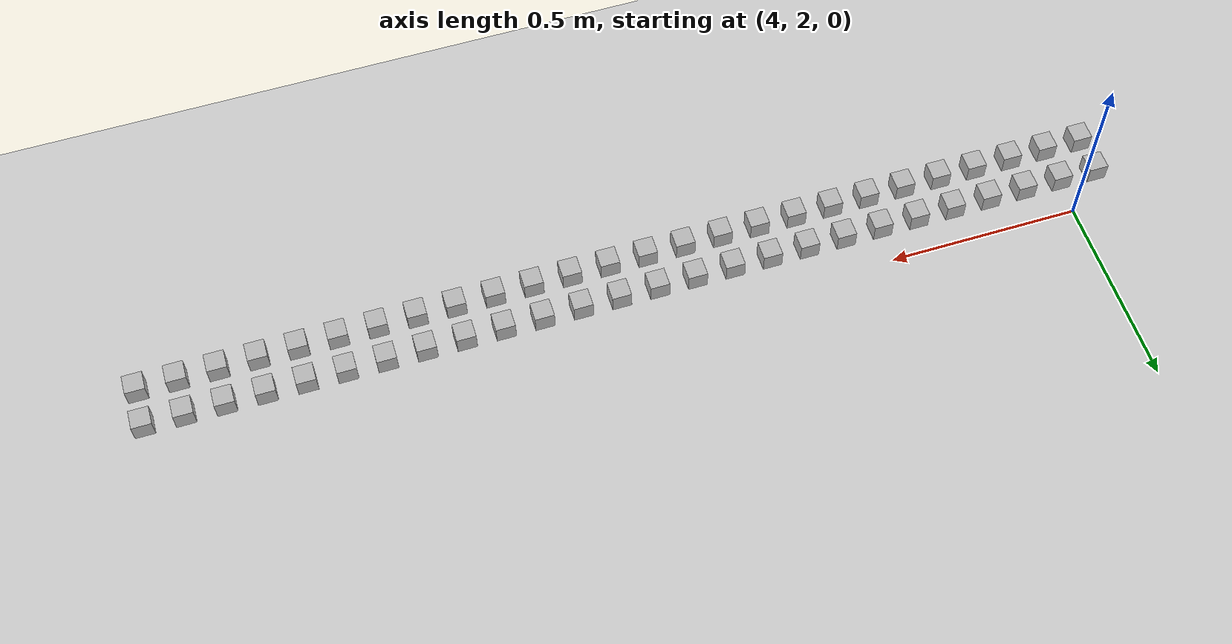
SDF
<sdf version="1.6">
 <world name="default">
  <model name="ground_plane">
   <static>1</static>
   <link name="link">
    <collision name="collision">
     <geometry><plane><normal>0 0 1</normal><size>100 100</size></plane></geometry>
     <surface><friction><ode><mu>100</mu><mu2>50</mu2></ode></friction></surface>
    </collision>
    <visual name="visual">
     <cast_shadows>0</cast_shadows>
     <geometry><plane><normal>0 0 1</normal><size>100 100</size></plane></geometry>
     <material>
      <script><uri>file://media/materials/scripts/gazebo.material</uri><name>Gazebo/Grey</name></script>
     </material>
    </visual>
   </link>
  </model>
  <model name="at0">
   <static>0</static>
   <link name="link">
    <inertial>
     <mass>0.01</mass>
     <inertia><ixx>4e-05</ixx><ixy>0</ixy><ixz>0</ixz><iyy>4e-05</iyy><iyz>0</iyz><izz>4e-05</izz></inertia>
    </inertial>
    <visual name="visual">
     <geometry><box><size>0.05 0.05 0.05</size></box></geometry>
     <material>
      <script>
       <uri>model://at0/materials/scripts</uri>
       <uri>model://at0/materials/textures</uri>
       <name>at0/Diffuse</name>
      </script>
     </material>
    </visual>
    <collision name="collision">
     <geometry><box><size>0.05 0.05 0.05</size></box></geometry>
     <surface><friction><ode><mu>0.8</mu><mu2>0.7</mu2></ode></friction></surface>
    </collision>
   </link>
   <pose>3.9 1.8 0.025 0 -0 0</pose>
  </model>
  <model name="at1">
   <static>0</static>
   <link name="link">
    <inertial>
     <mass>0.01</mass>
     <inertia><ixx>4e-05</ixx><ixy>0</ixy><ixz>0</ixz><iyy>4e-05</iyy><iyz>0</iyz><izz>4e-05</izz></inertia>
    </inertial>
    <visual name="visual">
     <geometry><box><size>0.05 0.05 0.05</size></box></geometry>
     <material>
      <script>
       <uri>model://at0/materials/scripts</uri>
       <uri>model://at0/materials/textures</uri>
       <name>at0/Diffuse</name>
      </script>
     </material>
    </visual>
    <collision name="collision">
     <geometry><box><size>0.05 0.05 0.05</size></box></geometry>
     <surface><friction><ode><mu>0.8</mu><mu2>0.7</mu2></ode></friction></surface>
    </collision>
   </link>
   <pose>4 1.8 0.025 0 -0 0</pose>
  </model>
  <model name="at2">
   <static>0</static>
   <link name="link">
    <inertial>
     <mass>0.01</mass>
     <inertia><ixx>4e-05</ixx><ixy>0</ixy><ixz>0</ixz><iyy>4e-05</iyy><iyz>0</iyz><izz>4e-05</izz></inertia>
    </inertial>
    <visual name="visual">
     <geometry><box><size>0.05 0.05 0.05</size></box></geometry>
     <material>
      <script>
       <uri>model://at0/materials/scripts</uri>
       <uri>model://at0/materials/textures</uri>
       <name>at0/Diffuse</name>
      </script>
     </material>
    </visual>
    <collision name="collision">
     <geometry><box><size>0.05 0.05 0.05</size></box></geometry>
     <surface><friction><ode><mu>0.8</mu><mu2>0.7</mu2></ode></friction></surface>
    </collision>
   </link>
   <pose>4.1 1.8 0.025 0 -0 0</pose>
  </model>
  <model name="at3">
   <static>0</static>
   <link name="link">
    <inertial>
     <mass>0.01</mass>
     <inertia><ixx>4e-05</ixx><ixy>0</ixy><ixz>0</ixz><iyy>4e-05</iyy><iyz>0</iyz><izz>4e-05</izz></inertia>
    </inertial>
    <visual name="visual">
     <geometry><box><size>0.05 0.05 0.05</size></box></geometry>
     <material>
      <script>
       <uri>model://at0/materials/scripts</uri>
       <uri>model://at0/materials/textures</uri>
       <name>at0/Diffuse</name>
      </script>
     </material>
    </visual>
    <collision name="collision">
     <geometry><box><size>0.05 0.05 0.05</size></box></geometry>
     <surface><friction><ode><mu>0.8</mu><mu2>0.7</mu2></ode></friction></surface>
    </collision>
   </link>
   <pose>4.2 1.8 0.025 0 -0 0</pose>
  </model>
  <model name="at4">
   <static>0</static>
   <link name="link">
    <inertial>
     <mass>0.01</mass>
     <inertia><ixx>4e-05</ixx><ixy>0</ixy><ixz>0</ixz><iyy>4e-05</iyy><iyz>0</iyz><izz>4e-05</izz></inertia>
    </inertial>
    <visual name="visual">
     <geometry><box><size>0.05 0.05 0.05</size></box></geometry>
     <material>
      <script>
       <uri>model://at0/materials/scripts</uri>
       <uri>model://at0/materials/textures</uri>
       <name>at0/Diffuse</name>
      </script>
     </material>
    </visual>
    <collision name="collision">
     <geometry><box><size>0.05 0.05 0.05</size></box></geometry>
     <surface><friction><ode><mu>0.8</mu><mu2>0.7</mu2></ode></friction></surface>
    </collision>
   </link>
   <pose>4.3 1.8 0.025 0 -0 0</pose>
  </model>
  <model name="at5">
   <static>0</static>
   <link name="link">
    <inertial>
     <mass>0.01</mass>
     <inertia><ixx>4e-05</ixx><ixy>0</ixy><ixz>0</ixz><iyy>4e-05</iyy><iyz>0</iyz><izz>4e-05</izz></inertia>
    </inertial>
    <visual name="visual">
     <geometry><box><size>0.05 0.05 0.05</size></box></geometry>
     <material>
      <script>
       <uri>model://at0/materials/scripts</uri>
       <uri>model://at0/materials/textures</uri>
       <name>at0/Diffuse</name>
      </script>
     </material>
    </visual>
    <collision name="collision">
     <geometry><box><size>0.05 0.05 0.05</size></box></geometry>
     <surface><friction><ode><mu>0.8</mu><mu2>0.7</mu2></ode></friction></surface>
    </collision>
   </link>
   <pose>4.4 1.8 0.025 0 -0 0</pose>
  </model>
  <model name="at6">
   <static>0</static>
   <link name="link">
    <inertial>
     <mass>0.01</mass>
     <inertia><ixx>4e-05</ixx><ixy>0</ixy><ixz>0</ixz><iyy>4e-05</iyy><iyz>0</iyz><izz>4e-05</izz></inertia>
    </inertial>
    <visual name="visual">
     <geometry><box><size>0.05 0.05 0.05</size></box></geometry>
     <material>
      <script>
       <uri>model://at0/materials/scripts</uri>
       <uri>model://at0/materials/textures</uri>
       <name>at0/Diffuse</name>
      </script>
     </material>
    </visual>
    <collision name="collision">
     <geometry><box><size>0.05 0.05 0.05</size></box></geometry>
     <surface><friction><ode><mu>0.8</mu><mu2>0.7</mu2></ode></friction></surface>
    </collision>
   </link>
   <pose>4.5 1.8 0.025 0 -0 0</pose>
  </model>
  <model name="at7">
   <static>0</static>
   <link name="link">
    <inertial>
     <mass>0.01</mass>
     <inertia><ixx>4e-05</ixx><ixy>0</ixy><ixz>0</ixz><iyy>4e-05</iyy><iyz>0</iyz><izz>4e-05</izz></inertia>
    </inertial>
    <visual name="visual">
     <geometry><box><size>0.05 0.05 0.05</size></box></geometry>
     <material>
      <script>
       <uri>model://at0/materials/scripts</uri>
       <uri>model://at0/materials/textures</uri>
       <name>at0/Diffuse</name>
      </script>
     </material>
    </visual>
    <collision name="collision">
     <geometry><box><size>0.05 0.05 0.05</size></box></geometry>
     <surface><friction><ode><mu>0.8</mu><mu2>0.7</mu2></ode></friction></surface>
    </collision>
   </link>
   <pose>4.6 1.8 0.025 0 -0 0</pose>
  </model>
  <model name="at8">
   <static>0</static>
   <link name="link">
    <inertial>
     <mass>0.01</mass>
     <inertia><ixx>4e-05</ixx><ixy>0</ixy><ixz>0</ixz><iyy>4e-05</iyy><iyz>0</iyz><izz>4e-05</izz></inertia>
    </inertial>
    <visual name="visual">
     <geometry><box><size>0.05 0.05 0.05</size></box></geometry>
     <material>
      <script>
       <uri>model://at0/materials/scripts</uri>
       <uri>model://at0/materials/textures</uri>
       <name>at0/Diffuse</name>
      </script>
     </material>
    </visual>
    <collision name="collision">
     <geometry><box><size>0.05 0.05 0.05</size></box></geometry>
     <surface><friction><ode><mu>0.8</mu><mu2>0.7</mu2></ode></friction></surface>
    </collision>
   </link>
   <pose>4.7 1.8 0.025 0 -0 0</pose>
  </model>
  <model name="at9">
   <static>0</static>
   <link name="link">
    <inertial>
     <mass>0.01</mass>
     <inertia><ixx>4e-05</ixx><ixy>0</ixy><ixz>0</ixz><iyy>4e-05</iyy><iyz>0</iyz><izz>4e-05</izz></inertia>
    </inertial>
    <visual name="visual">
     <geometry><box><size>0.05 0.05 0.05</size></box></geometry>
     <material>
      <script>
       <uri>model://at0/materials/scripts</uri>
       <uri>model://at0/materials/textures</uri>
       <name>at0/Diffuse</name>
      </script>
     </material>
    </visual>
    <collision name="collision">
     <geometry><box><size>0.05 0.05 0.05</size></box></geometry>
     <surface><friction><ode><mu>0.8</mu><mu2>0.7</mu2></ode></friction></surface>
    </collision>
   </link>
   <pose>4.8 1.8 0.025 0 -0 0</pose>
  </model>
  <model name="at10">
   <static>0</static>
   <link name="link">
    <inertial>
     <mass>0.01</mass>
     <inertia><ixx>4e-05</ixx><ixy>0</ixy><ixz>0</ixz><iyy>4e-05</iyy><iyz>0</iyz><izz>4e-05</izz></inertia>
    </inertial>
    <visual name="visual">
     <geometry><box><size>0.05 0.05 0.05</size></box></geometry>
     <material>
      <script>
       <uri>model://at0/materials/scripts</uri>
       <uri>model://at0/materials/textures</uri>
       <name>at0/Diffuse</name>
      </script>
     </material>
    </visual>
    <collision name="collision">
     <geometry><box><size>0.05 0.05 0.05</size></box></geometry>
     <surface><friction><ode><mu>0.8</mu><mu2>0.7</mu2></ode></friction></surface>
    </collision>
   </link>
   <pose>4.9 1.8 0.025 0 -0 0</pose>
  </model>
  <model name="at11">
   <static>0</static>
   <link name="link">
    <inertial>
     <mass>0.01</mass>
     <inertia><ixx>4e-05</ixx><ixy>0</ixy><ixz>0</ixz><iyy>4e-05</iyy><iyz>0</iyz><izz>4e-05</izz></inertia>
    </inertial>
    <visual name="visual">
     <geometry><box><size>0.05 0.05 0.05</size></box></geometry>
     <material>
      <script>
       <uri>model://at0/materials/scripts</uri>
       <uri>model://at0/materials/textures</uri>
       <name>at0/Diffuse</name>
      </script>
     </material>
    </visual>
    <collision name="collision">
     <geometry><box><size>0.05 0.05 0.05</size></box></geometry>
     <surface><friction><ode><mu>0.8</mu><mu2>0.7</mu2></ode></friction></surface>
    </collision>
   </link>
   <pose>5 1.8 0.025 0 -0 0</pose>
  </model>
  <model name="at12">
   <static>0</static>
   <link name="link">
    <inertial>
     <mass>0.01</mass>
     <inertia><ixx>4e-05</ixx><ixy>0</ixy><ixz>0</ixz><iyy>4e-05</iyy><iyz>0</iyz><izz>4e-05</izz></inertia>
    </inertial>
    <visual name="visual">
     <geometry><box><size>0.05 0.05 0.05</size></box></geometry>
     <material>
      <script>
       <uri>model://at0/materials/scripts</uri>
       <uri>model://at0/materials/textures</uri>
       <name>at0/Diffuse</name>
      </script>
     </material>
    </visual>
    <collision name="collision">
     <geometry><box><size>0.05 0.05 0.05</size></box></geometry>
     <surface><friction><ode><mu>0.8</mu><mu2>0.7</mu2></ode></friction></surface>
    </collision>
   </link>
   <pose>5.1 1.8 0.025 0 -0 0</pose>
  </model>
  <model name="at13">
   <static>0</static>
   <link name="link">
    <inertial>
     <mass>0.01</mass>
     <inertia><ixx>4e-05</ixx><ixy>0</ixy><ixz>0</ixz><iyy>4e-05</iyy><iyz>0</iyz><izz>4e-05</izz></inertia>
    </inertial>
    <visual name="visual">
     <geometry><box><size>0.05 0.05 0.05</size></box></geometry>
     <material>
      <script>
       <uri>model://at0/materials/scripts</uri>
       <uri>model://at0/materials/textures</uri>
       <name>at0/Diffuse</name>
      </script>
     </material>
    </visual>
    <collision name="collision">
     <geometry><box><size>0.05 0.05 0.05</size></box></geometry>
     <surface><friction><ode><mu>0.8</mu><mu2>0.7</mu2></ode></friction></surface>
    </collision>
   </link>
   <pose>5.2 1.8 0.025 0 -0 0</pose>
  </model>
  <model name="at14">
   <static>0</static>
   <link name="link">
    <inertial>
     <mass>0.01</mass>
     <inertia><ixx>4e-05</ixx><ixy>0</ixy><ixz>0</ixz><iyy>4e-05</iyy><iyz>0</iyz><izz>4e-05</izz></inertia>
    </inertial>
    <visual name="visual">
     <geometry><box><size>0.05 0.05 0.05</size></box></geometry>
     <material>
      <script>
       <uri>model://at0/materials/scripts</uri>
       <uri>model://at0/materials/textures</uri>
       <name>at0/Diffuse</name>
      </script>
     </material>
    </visual>
    <collision name="collision">
     <geometry><box><size>0.05 0.05 0.05</size></box></geometry>
     <surface><friction><ode><mu>0.8</mu><mu2>0.7</mu2></ode></friction></surface>
    </collision>
   </link>
   <pose>5.3 1.8 0.025 0 -0 0</pose>
  </model>
  <model name="at15">
   <static>0</static>
   <link name="link">
    <inertial>
     <mass>0.01</mass>
     <inertia><ixx>4e-05</ixx><ixy>0</ixy><ixz>0</ixz><iyy>4e-05</iyy><iyz>0</iyz><izz>4e-05</izz></inertia>
    </inertial>
    <visual name="visual">
     <geometry><box><size>0.05 0.05 0.05</size></box></geometry>
     <material>
      <script>
       <uri>model://at0/materials/scripts</uri>
       <uri>model://at0/materials/textures</uri>
       <name>at0/Diffuse</name>
      </script>
     </material>
    </visual>
    <collision name="collision">
     <geometry><box><size>0.05 0.05 0.05</size></box></geometry>
     <surface><friction><ode><mu>0.8</mu><mu2>0.7</mu2></ode></friction></surface>
    </collision>
   </link>
   <pose>5.4 1.8 0.025 0 -0 0</pose>
  </model>
  <model name="at16">
   <static>0</static>
   <link name="link">
    <inertial>
     <mass>0.01</mass>
     <inertia><ixx>4e-05</ixx><ixy>0</ixy><ixz>0</ixz><iyy>4e-05</iyy><iyz>0</iyz><izz>4e-05</izz></inertia>
    </inertial>
    <visual name="visual">
     <geometry><box><size>0.05 0.05 0.05</size></box></geometry>
     <material>
      <script>
       <uri>model://at0/materials/scripts</uri>
       <uri>model://at0/materials/textures</uri>
       <name>at0/Diffuse</name>
      </script>
     </material>
    </visual>
    <collision name="collision">
     <geometry><box><size>0.05 0.05 0.05</size></box></geometry>
     <surface><friction><ode><mu>0.8</mu><mu2>0.7</mu2></ode></friction></surface>
    </collision>
   </link>
   <pose>5.5 1.8 0.025 0 -0 0</pose>
  </model>
  <model name="at17">
   <static>0</static>
   <link name="link">
    <inertial>
     <mass>0.01</mass>
     <inertia><ixx>4e-05</ixx><ixy>0</ixy><ixz>0</ixz><iyy>4e-05</iyy><iyz>0</iyz><izz>4e-05</izz></inertia>
    </inertial>
    <visual name="visual">
     <geometry><box><size>0.05 0.05 0.05</size></box></geometry>
     <material>
      <script>
       <uri>model://at0/materials/scripts</uri>
       <uri>model://at0/materials/textures</uri>
       <name>at0/Diffuse</name>
      </script>
     </material>
    </visual>
    <collision name="collision">
     <geometry><box><size>0.05 0.05 0.05</size></box></geometry>
     <surface><friction><ode><mu>0.8</mu><mu2>0.7</mu2></ode></friction></surface>
    </collision>
   </link>
   <pose>5.6 1.8 0.025 0 -0 0</pose>
  </model>
  <model name="at18">
   <static>0</static>
   <link name="link">
    <inertial>
     <mass>0.01</mass>
     <inertia><ixx>4e-05</ixx><ixy>0</ixy><ixz>0</ixz><iyy>4e-05</iyy><iyz>0</iyz><izz>4e-05</izz></inertia>
    </inertial>
    <visual name="visual">
     <geometry><box><size>0.05 0.05 0.05</size></box></geometry>
     <material>
      <script>
       <uri>model://at0/materials/scripts</uri>
       <uri>model://at0/materials/textures</uri>
       <name>at0/Diffuse</name>
      </script>
     </material>
    </visual>
    <collision name="collision">
     <geometry><box><size>0.05 0.05 0.05</size></box></geometry>
     <surface><friction><ode><mu>0.8</mu><mu2>0.7</mu2></ode></friction></surface>
    </collision>
   </link>
   <pose>5.7 1.8 0.025 0 -0 0</pose>
  </model>
  <model name="at19">
   <static>0</static>
   <link name="link">
    <inertial>
     <mass>0.01</mass>
     <inertia><ixx>4e-05</ixx><ixy>0</ixy><ixz>0</ixz><iyy>4e-05</iyy><iyz>0</iyz><izz>4e-05</izz></inertia>
    </inertial>
    <visual name="visual">
     <geometry><box><size>0.05 0.05 0.05</size></box></geometry>
     <material>
      <script>
       <uri>model://at0/materials/scripts</uri>
       <uri>model://at0/materials/textures</uri>
       <name>at0/Diffuse</name>
      </script>
     </material>
    </visual>
    <collision name="collision">
     <geometry><box><size>0.05 0.05 0.05</size></box></geometry>
     <surface><friction><ode><mu>0.8</mu><mu2>0.7</mu2></ode></friction></surface>
    </collision>
   </link>
   <pose>5.8 1.8 0.025 0 -0 0</pose>
  </model>
  <model name="at20">
   <static>0</static>
   <link name="link">
    <inertial>
     <mass>0.01</mass>
     <inertia><ixx>4e-05</ixx><ixy>0</ixy><ixz>0</ixz><iyy>4e-05</iyy><iyz>0</iyz><izz>4e-05</izz></inertia>
    </inertial>
    <visual name="visual">
     <geometry><box><size>0.05 0.05 0.05</size></box></geometry>
     <material>
      <script>
       <uri>model://at0/materials/scripts</uri>
       <uri>model://at0/materials/textures</uri>
       <name>at0/Diffuse</name>
      </script>
     </material>
    </visual>
    <collision name="collision">
     <geometry><box><size>0.05 0.05 0.05</size></box></geometry>
     <surface><friction><ode><mu>0.8</mu><mu2>0.7</mu2></ode></friction></surface>
    </collision>
   </link>
   <pose>5.9 1.8 0.025 0 -0 0</pose>
  </model>
  <model name="at21">
   <static>0</static>
   <link name="link">
    <inertial>
     <mass>0.01</mass>
     <inertia><ixx>4e-05</ixx><ixy>0</ixy><ixz>0</ixz><iyy>4e-05</iyy><iyz>0</iyz><izz>4e-05</izz></inertia>
    </inertial>
    <visual name="visual">
     <geometry><box><size>0.05 0.05 0.05</size></box></geometry>
     <material>
      <script>
       <uri>model://at0/materials/scripts</uri>
       <uri>model://at0/materials/textures</uri>
       <name>at0/Diffuse</name>
      </script>
     </material>
    </visual>
    <collision name="collision">
     <geometry><box><size>0.05 0.05 0.05</size></box></geometry>
     <surface><friction><ode><mu>0.8</mu><mu2>0.7</mu2></ode></friction></surface>
    </collision>
   </link>
   <pose>6 1.8 0.025 0 -0 0</pose>
  </model>
  <model name="at22">
   <static>0</static>
   <link name="link">
    <inertial>
     <mass>0.01</mass>
     <inertia><ixx>4e-05</ixx><ixy>0</ixy><ixz>0</ixz><iyy>4e-05</iyy><iyz>0</iyz><izz>4e-05</izz></inertia>
    </inertial>
    <visual name="visual">
     <geometry><box><size>0.05 0.05 0.05</size></box></geometry>
     <material>
      <script>
       <uri>model://at0/materials/scripts</uri>
       <uri>model://at0/materials/textures</uri>
       <name>at0/Diffuse</name>
      </script>
     </material>
    </visual>
    <collision name="collision">
     <geometry><box><size>0.05 0.05 0.05</size></box></geometry>
     <surface><friction><ode><mu>0.8</mu><mu2>0.7</mu2></ode></friction></surface>
    </collision>
   </link>
   <pose>6.1 1.8 0.025 0 -0 0</pose>
  </model>
  <model name="at23">
   <static>0</static>
   <link name="link">
    <inertial>
     <mass>0.01</mass>
     <inertia><ixx>4e-05</ixx><ixy>0</ixy><ixz>0</ixz><iyy>4e-05</iyy><iyz>0</iyz><izz>4e-05</izz></inertia>
    </inertial>
    <visual name="visual">
     <geometry><box><size>0.05 0.05 0.05</size></box></geometry>
     <material>
      <script>
       <uri>model://at0/materials/scripts</uri>
       <uri>model://at0/materials/textures</uri>
       <name>at0/Diffuse</name>
      </script>
     </material>
    </visual>
    <collision name="collision">
     <geometry><box><size>0.05 0.05 0.05</size></box></geometry>
     <surface><friction><ode><mu>0.8</mu><mu2>0.7</mu2></ode></friction></surface>
    </collision>
   </link>
   <pose>6.2 1.8 0.025 0 -0 0</pose>
  </model>
  <model name="at24">
   <static>0</static>
   <link name="link">
    <inertial>
     <mass>0.01</mass>
     <inertia><ixx>4e-05</ixx><ixy>0</ixy><ixz>0</ixz><iyy>4e-05</iyy><iyz>0</iyz><izz>4e-05</izz></inertia>
    </inertial>
    <visual name="visual">
     <geometry><box><size>0.05 0.05 0.05</size></box></geometry>
     <material>
      <script>
       <uri>model://at0/materials/scripts</uri>
       <uri>model://at0/materials/textures</uri>
       <name>at0/Diffuse</name>
      </script>
     </material>
    </visual>
    <collision name="collision">
     <geometry><box><size>0.05 0.05 0.05</size></box></geometry>
     <surface><friction><ode><mu>0.8</mu><mu2>0.7</mu2></ode></friction></surface>
    </collision>
   </link>
   <pose>6.3 1.8 0.025 0 -0 0</pose>
  </model>
  <model name="at25">
   <static>0</static>
   <link name="link">
    <inertial>
     <mass>0.01</mass>
     <inertia><ixx>4e-05</ixx><ixy>0</ixy><ixz>0</ixz><iyy>4e-05</iyy><iyz>0</iyz><izz>4e-05</izz></inertia>
    </inertial>
    <visual name="visual">
     <geometry><box><size>0.05 0.05 0.05</size></box></geometry>
     <material>
      <script>
       <uri>model://at0/materials/scripts</uri>
       <uri>model://at0/materials/textures</uri>
       <name>at0/Diffuse</name>
      </script>
     </material>
    </visual>
    <collision name="collision">
     <geometry><box><size>0.05 0.05 0.05</size></box></geometry>
     <surface><friction><ode><mu>0.8</mu><mu2>0.7</mu2></ode></friction></surface>
    </collision>
   </link>
   <pose>6.4 1.8 0.025 0 -0 0</pose>
  </model>
  <model name="at32">
   <static>0</static>
   <link name="link">
    <inertial>
     <mass>0.01</mass>
     <inertia><ixx>4e-05</ixx><ixy>0</ixy><ixz>0</ixz><iyy>4e-05</iyy><iyz>0</iyz><izz>4e-05</izz></inertia>
    </inertial>
    <visual name="visual">
     <geometry><box><size>0.05 0.05 0.05</size></box></geometry>
     <material>
      <script>
       <uri>model://at0/materials/scripts</uri>
       <uri>model://at0/materials/textures</uri>
       <name>at0/Diffuse</name>
      </script>
     </material>
    </visual>
    <collision name="collision">
     <geometry><box><size>0.05 0.05 0.05</size></box></geometry>
     <surface><friction><ode><mu>0.8</mu><mu2>0.7</mu2></ode></friction></surface>
    </collision>
   </link>
   <pose>3.9 1.9 0.025 0 -0 0</pose>
  </model>
  <model name="at33">
   <static>0</static>
   <link name="link">
    <inertial>
     <mass>0.01</mass>
     <inertia><ixx>4e-05</ixx><ixy>0</ixy><ixz>0</ixz><iyy>4e-05</iyy><iyz>0</iyz><izz>4e-05</izz></inertia>
    </inertial>
    <visual name="visual">
     <geometry><box><size>0.05 0.05 0.05</size></box></geometry>
     <material>
      <script>
       <uri>model://at0/materials/scripts</uri>
       <uri>model://at0/materials/textures</uri>
       <name>at0/Diffuse</name>
      </script>
     </material>
    </visual>
    <collision name="collision">
     <geometry><box><size>0.05 0.05 0.05</size></box></geometry>
     <surface><friction><ode><mu>0.8</mu><mu2>0.7</mu2></ode></friction></surface>
    </collision>
   </link>
   <pose>4 1.9 0.025 0 -0 0</pose>
  </model>
  <model name="at34">
   <static>0</static>
   <link name="link">
    <inertial>
     <mass>0.01</mass>
     <inertia><ixx>4e-05</ixx><ixy>0</ixy><ixz>0</ixz><iyy>4e-05</iyy><iyz>0</iyz><izz>4e-05</izz></inertia>
    </inertial>
    <visual name="visual">
     <geometry><box><size>0.05 0.05 0.05</size></box></geometry>
     <material>
      <script>
       <uri>model://at0/materials/scripts</uri>
       <uri>model://at0/materials/textures</uri>
       <name>at0/Diffuse</name>
      </script>
     </material>
    </visual>
    <collision name="collision">
     <geometry><box><size>0.05 0.05 0.05</size></box></geometry>
     <surface><friction><ode><mu>0.8</mu><mu2>0.7</mu2></ode></friction></surface>
    </collision>
   </link>
   <pose>4.1 1.9 0.025 0 -0 0</pose>
  </model>
  <model name="at35">
   <static>0</static>
   <link name="link">
    <inertial>
     <mass>0.01</mass>
     <inertia><ixx>4e-05</ixx><ixy>0</ixy><ixz>0</ixz><iyy>4e-05</iyy><iyz>0</iyz><izz>4e-05</izz></inertia>
    </inertial>
    <visual name="visual">
     <geometry><box><size>0.05 0.05 0.05</size></box></geometry>
     <material>
      <script>
       <uri>model://at0/materials/scripts</uri>
       <uri>model://at0/materials/textures</uri>
       <name>at0/Diffuse</name>
      </script>
     </material>
    </visual>
    <collision name="collision">
     <geometry><box><size>0.05 0.05 0.05</size></box></geometry>
     <surface><friction><ode><mu>0.8</mu><mu2>0.7</mu2></ode></friction></surface>
    </collision>
   </link>
   <pose>4.2 1.9 0.025 0 -0 0</pose>
  </model>
  <model name="at36">
   <static>0</static>
   <link name="link">
    <inertial>
     <mass>0.01</mass>
     <inertia><ixx>4e-05</ixx><ixy>0</ixy><ixz>0</ixz><iyy>4e-05</iyy><iyz>0</iyz><izz>4e-05</izz></inertia>
    </inertial>
    <visual name="visual">
     <geometry><box><size>0.05 0.05 0.05</size></box></geometry>
     <material>
      <script>
       <uri>model://at0/materials/scripts</uri>
       <uri>model://at0/materials/textures</uri>
       <name>at0/Diffuse</name>
      </script>
     </material>
    </visual>
    <collision name="collision">
     <geometry><box><size>0.05 0.05 0.05</size></box></geometry>
     <surface><friction><ode><mu>0.8</mu><mu2>0.7</mu2></ode></friction></surface>
    </collision>
   </link>
   <pose>4.3 1.9 0.025 0 -0 0</pose>
  </model>
  <model name="at37">
   <static>0</static>
   <link name="link">
    <inertial>
     <mass>0.01</mass>
     <inertia><ixx>4e-05</ixx><ixy>0</ixy><ixz>0</ixz><iyy>4e-05</iyy><iyz>0</iyz><izz>4e-05</izz></inertia>
    </inertial>
    <visual name="visual">
     <geometry><box><size>0.05 0.05 0.05</size></box></geometry>
     <material>
      <script>
       <uri>model://at0/materials/scripts</uri>
       <uri>model://at0/materials/textures</uri>
       <name>at0/Diffuse</name>
      </script>
     </material>
    </visual>
    <collision name="collision">
     <geometry><box><size>0.05 0.05 0.05</size></box></geometry>
     <surface><friction><ode><mu>0.8</mu><mu2>0.7</mu2></ode></friction></surface>
    </collision>
   </link>
   <pose>4.4 1.9 0.025 0 -0 0</pose>
  </model>
  <model name="at38">
   <static>0</static>
   <link name="link">
    <inertial>
     <mass>0.01</mass>
     <inertia><ixx>4e-05</ixx><ixy>0</ixy><ixz>0</ixz><iyy>4e-05</iyy><iyz>0</iyz><izz>4e-05</izz></inertia>
    </inertial>
    <visual name="visual">
     <geometry><box><size>0.05 0.05 0.05</size></box></geometry>
     <material>
      <script>
       <uri>model://at0/materials/scripts</uri>
       <uri>model://at0/materials/textures</uri>
       <name>at0/Diffuse</name>
      </script>
     </material>
    </visual>
    <collision name="collision">
     <geometry><box><size>0.05 0.05 0.05</size></box></geometry>
     <surface><friction><ode><mu>0.8</mu><mu2>0.7</mu2></ode></friction></surface>
    </collision>
   </link>
   <pose>4.5 1.9 0.025 0 -0 0</pose>
  </model>
  <model name="at39">
   <static>0</static>
   <link name="link">
    <inertial>
     <mass>0.01</mass>
     <inertia><ixx>4e-05</ixx><ixy>0</ixy><ixz>0</ixz><iyy>4e-05</iyy><iyz>0</iyz><izz>4e-05</izz></inertia>
    </inertial>
    <visual name="visual">
     <geometry><box><size>0.05 0.05 0.05</size></box></geometry>
     <material>
      <script>
       <uri>model://at0/materials/scripts</uri>
       <uri>model://at0/materials/textures</uri>
       <name>at0/Diffuse</name>
      </script>
     </material>
    </visual>
    <collision name="collision">
     <geometry><box><size>0.05 0.05 0.05</size></box></geometry>
     <surface><friction><ode><mu>0.8</mu><mu2>0.7</mu2></ode></friction></surface>
    </collision>
   </link>
   <pose>4.6 1.9 0.025 0 -0 0</pose>
  </model>
  <model name="at40">
   <static>0</static>
   <link name="link">
    <inertial>
     <mass>0.01</mass>
     <inertia><ixx>4e-05</ixx><ixy>0</ixy><ixz>0</ixz><iyy>4e-05</iyy><iyz>0</iyz><izz>4e-05</izz></inertia>
    </inertial>
    <visual name="visual">
     <geometry><box><size>0.05 0.05 0.05</size></box></geometry>
     <material>
      <script>
       <uri>model://at0/materials/scripts</uri>
       <uri>model://at0/materials/textures</uri>
       <name>at0/Diffuse</name>
      </script>
     </material>
    </visual>
    <collision name="collision">
     <geometry><box><size>0.05 0.05 0.05</size></box></geometry>
     <surface><friction><ode><mu>0.8</mu><mu2>0.7</mu2></ode></friction></surface>
    </collision>
   </link>
   <pose>4.7 1.9 0.025 0 -0 0</pose>
  </model>
  <model name="at41">
   <static>0</static>
   <link name="link">
    <inertial>
     <mass>0.01</mass>
     <inertia><ixx>4e-05</ixx><ixy>0</ixy><ixz>0</ixz><iyy>4e-05</iyy><iyz>0</iyz><izz>4e-05</izz></inertia>
    </inertial>
    <visual name="visual">
     <geometry><box><size>0.05 0.05 0.05</size></box></geometry>
     <material>
      <script>
       <uri>model://at0/materials/scripts</uri>
       <uri>model://at0/materials/textures</uri>
       <name>at0/Diffuse</name>
      </script>
     </material>
    </visual>
    <collision name="collision">
     <geometry><box><size>0.05 0.05 0.05</size></box></geometry>
     <surface><friction><ode><mu>0.8</mu><mu2>0.7</mu2></ode></friction></surface>
    </collision>
   </link>
   <pose>4.8 1.9 0.025 0 -0 0</pose>
  </model>
  <model name="at42">
   <static>0</static>
   <link name="link">
    <inertial>
     <mass>0.01</mass>
     <inertia><ixx>4e-05</ixx><ixy>0</ixy><ixz>0</ixz><iyy>4e-05</iyy><iyz>0</iyz><izz>4e-05</izz></inertia>
    </inertial>
    <visual name="visual">
     <geometry><box><size>0.05 0.05 0.05</size></box></geometry>
     <material>
      <script>
       <uri>model://at0/materials/scripts</uri>
       <uri>model://at0/materials/textures</uri>
       <name>at0/Diffuse</name>
      </script>
     </material>
    </visual>
    <collision name="collision">
     <geometry><box><size>0.05 0.05 0.05</size></box></geometry>
     <surface><friction><ode><mu>0.8</mu><mu2>0.7</mu2></ode></friction></surface>
    </collision>
   </link>
   <pose>4.9 1.9 0.025 0 -0 0</pose>
  </model>
  <model name="at43">
   <static>0</static>
   <link name="link">
    <inertial>
     <mass>0.01</mass>
     <inertia><ixx>4e-05</ixx><ixy>0</ixy><ixz>0</ixz><iyy>4e-05</iyy><iyz>0</iyz><izz>4e-05</izz></inertia>
    </inertial>
    <visual name="visual">
     <geometry><box><size>0.05 0.05 0.05</size></box></geometry>
     <material>
      <script>
       <uri>model://at0/materials/scripts</uri>
       <uri>model://at0/materials/textures</uri>
       <name>at0/Diffuse</name>
      </script>
     </material>
    </visual>
    <collision name="collision">
     <geometry><box><size>0.05 0.05 0.05</size></box></geometry>
     <surface><friction><ode><mu>0.8</mu><mu2>0.7</mu2></ode></friction></surface>
    </collision>
   </link>
   <pose>5 1.9 0.025 0 -0 0</pose>
  </model>
  <model name="at44">
   <static>0</static>
   <link name="link">
    <inertial>
     <mass>0.01</mass>
     <inertia><ixx>4e-05</ixx><ixy>0</ixy><ixz>0</ixz><iyy>4e-05</iyy><iyz>0</iyz><izz>4e-05</izz></inertia>
    </inertial>
    <visual name="visual">
     <geometry><box><size>0.05 0.05 0.05</size></box></geometry>
     <material>
      <script>
       <uri>model://at0/materials/scripts</uri>
       <uri>model://at0/materials/textures</uri>
       <name>at0/Diffuse</name>
      </script>
     </material>
    </visual>
    <collision name="collision">
     <geometry><box><size>0.05 0.05 0.05</size></box></geometry>
     <surface><friction><ode><mu>0.8</mu><mu2>0.7</mu2></ode></friction></surface>
    </collision>
   </link>
   <pose>5.1 1.9 0.025 0 -0 0</pose>
  </model>
  <model name="at45">
   <static>0</static>
   <link name="link">
    <inertial>
     <mass>0.01</mass>
     <inertia><ixx>4e-05</ixx><ixy>0</ixy><ixz>0</ixz><iyy>4e-05</iyy><iyz>0</iyz><izz>4e-05</izz></inertia>
    </inertial>
    <visual name="visual">
     <geometry><box><size>0.05 0.05 0.05</size></box></geometry>
     <material>
      <script>
       <uri>model://at0/materials/scripts</uri>
       <uri>model://at0/materials/textures</uri>
       <name>at0/Diffuse</name>
      </script>
     </material>
    </visual>
    <collision name="collision">
     <geometry><box><size>0.05 0.05 0.05</size></box></geometry>
     <surface><friction><ode><mu>0.8</mu><mu2>0.7</mu2></ode></friction></surface>
    </collision>
   </link>
   <pose>5.2 1.9 0.025 0 -0 0</pose>
  </model>
  <model name="at46">
   <static>0</static>
   <link name="link">
    <inertial>
     <mass>0.01</mass>
     <inertia><ixx>4e-05</ixx><ixy>0</ixy><ixz>0</ixz><iyy>4e-05</iyy><iyz>0</iyz><izz>4e-05</izz></inertia>
    </inertial>
    <visual name="visual">
     <geometry><box><size>0.05 0.05 0.05</size></box></geometry>
     <material>
      <script>
       <uri>model://at0/materials/scripts</uri>
       <uri>model://at0/materials/textures</uri>
       <name>at0/Diffuse</name>
      </script>
     </material>
    </visual>
    <collision name="collision">
     <geometry><box><size>0.05 0.05 0.05</size></box></geometry>
     <surface><friction><ode><mu>0.8</mu><mu2>0.7</mu2></ode></friction></surface>
    </collision>
   </link>
   <pose>5.3 1.9 0.025 0 -0 0</pose>
  </model>
  <model name="at47">
   <static>0</static>
   <link name="link">
    <inertial>
     <mass>0.01</mass>
     <inertia><ixx>4e-05</ixx><ixy>0</ixy><ixz>0</ixz><iyy>4e-05</iyy><iyz>0</iyz><izz>4e-05</izz></inertia>
    </inertial>
    <visual name="visual">
     <geometry><box><size>0.05 0.05 0.05</size></box></geometry>
     <material>
      <script>
       <uri>model://at0/materials/scripts</uri>
       <uri>model://at0/materials/textures</uri>
       <name>at0/Diffuse</name>
      </script>
     </material>
    </visual>
    <collision name="collision">
     <geometry><box><size>0.05 0.05 0.05</size></box></geometry>
     <surface><friction><ode><mu>0.8</mu><mu2>0.7</mu2></ode></friction></surface>
    </collision>
   </link>
   <pose>5.4 1.9 0.025 0 -0 0</pose>
  </model>
  <model name="at48">
   <static>0</static>
   <link name="link">
    <inertial>
     <mass>0.01</mass>
     <inertia><ixx>4e-05</ixx><ixy>0</ixy><ixz>0</ixz><iyy>4e-05</iyy><iyz>0</iyz><izz>4e-05</izz></inertia>
    </inertial>
    <visual name="visual">
     <geometry><box><size>0.05 0.05 0.05</size></box></geometry>
     <material>
      <script>
       <uri>model://at0/materials/scripts</uri>
       <uri>model://at0/materials/textures</uri>
       <name>at0/Diffuse</name>
      </script>
     </material>
    </visual>
    <collision name="collision">
     <geometry><box><size>0.05 0.05 0.05</size></box></geometry>
     <surface><friction><ode><mu>0.8</mu><mu2>0.7</mu2></ode></friction></surface>
    </collision>
   </link>
   <pose>5.5 1.9 0.025 0 -0 0</pose>
  </model>
  <model name="at49">
   <static>0</static>
   <link name="link">
    <inertial>
     <mass>0.01</mass>
     <inertia><ixx>4e-05</ixx><ixy>0</ixy><ixz>0</ixz><iyy>4e-05</iyy><iyz>0</iyz><izz>4e-05</izz></inertia>
    </inertial>
    <visual name="visual">
     <geometry><box><size>0.05 0.05 0.05</size></box></geometry>
     <material>
      <script>
       <uri>model://at0/materials/scripts</uri>
       <uri>model://at0/materials/textures</uri>
       <name>at0/Diffuse</name>
      </script>
     </material>
    </visual>
    <collision name="collision">
     <geometry><box><size>0.05 0.05 0.05</size></box></geometry>
     <surface><friction><ode><mu>0.8</mu><mu2>0.7</mu2></ode></friction></surface>
    </collision>
   </link>
   <pose>5.6 1.9 0.025 0 -0 0</pose>
  </model>
  <model name="at50">
   <static>0</static>
   <link name="link">
    <inertial>
     <mass>0.01</mass>
     <inertia><ixx>4e-05</ixx><ixy>0</ixy><ixz>0</ixz><iyy>4e-05</iyy><iyz>0</iyz><izz>4e-05</izz></inertia>
    </inertial>
    <visual name="visual">
     <geometry><box><size>0.05 0.05 0.05</size></box></geometry>
     <material>
      <script>
       <uri>model://at0/materials/scripts</uri>
       <uri>model://at0/materials/textures</uri>
       <name>at0/Diffuse</name>
      </script>
     </material>
    </visual>
    <collision name="collision">
     <geometry><box><size>0.05 0.05 0.05</size></box></geometry>
     <surface><friction><ode><mu>0.8</mu><mu2>0.7</mu2></ode></friction></surface>
    </collision>
   </link>
   <pose>5.7 1.9 0.025 0 -0 0</pose>
  </model>
  <model name="at51">
   <static>0</static>
   <link name="link">
    <inertial>
     <mass>0.01</mass>
     <inertia><ixx>4e-05</ixx><ixy>0</ixy><ixz>0</ixz><iyy>4e-05</iyy><iyz>0</iyz><izz>4e-05</izz></inertia>
    </inertial>
    <visual name="visual">
     <geometry><box><size>0.05 0.05 0.05</size></box></geometry>
     <material>
      <script>
       <uri>model://at0/materials/scripts</uri>
       <uri>model://at0/materials/textures</uri>
       <name>at0/Diffuse</name>
      </script>
     </material>
    </visual>
    <collision name="collision">
     <geometry><box><size>0.05 0.05 0.05</size></box></geometry>
     <surface><friction><ode><mu>0.8</mu><mu2>0.7</mu2></ode></friction></surface>
    </collision>
   </link>
   <pose>5.8 1.9 0.025 0 -0 0</pose>
  </model>
  <model name="at52">
   <static>0</static>
   <link name="link">
    <inertial>
     <mass>0.01</mass>
     <inertia><ixx>4e-05</ixx><ixy>0</ixy><ixz>0</ixz><iyy>4e-05</iyy><iyz>0</iyz><izz>4e-05</izz></inertia>
    </inertial>
    <visual name="visual">
     <geometry><box><size>0.05 0.05 0.05</size></box></geometry>
     <material>
      <script>
       <uri>model://at0/materials/scripts</uri>
       <uri>model://at0/materials/textures</uri>
       <name>at0/Diffuse</name>
      </script>
     </material>
    </visual>
    <collision name="collision">
     <geometry><box><size>0.05 0.05 0.05</size></box></geometry>
     <surface><friction><ode><mu>0.8</mu><mu2>0.7</mu2></ode></friction></surface>
    </collision>
   </link>
   <pose>5.9 1.9 0.025 0 -0 0</pose>
  </model>
  <model name="at53">
   <static>0</static>
   <link name="link">
    <inertial>
     <mass>0.01</mass>
     <inertia><ixx>4e-05</ixx><ixy>0</ixy><ixz>0</ixz><iyy>4e-05</iyy><iyz>0</iyz><izz>4e-05</izz></inertia>
    </inertial>
    <visual name="visual">
     <geometry><box><size>0.05 0.05 0.05</size></box></geometry>
     <material>
      <script>
       <uri>model://at0/materials/scripts</uri>
       <uri>model://at0/materials/textures</uri>
       <name>at0/Diffuse</name>
      </script>
     </material>
    </visual>
    <collision name="collision">
     <geometry><box><size>0.05 0.05 0.05</size></box></geometry>
     <surface><friction><ode><mu>0.8</mu><mu2>0.7</mu2></ode></friction></surface>
    </collision>
   </link>
   <pose>6 1.9 0.025 0 -0 0</pose>
  </model>
  <model name="at54">
   <static>0</static>
   <link name="link">
    <inertial>
     <mass>0.01</mass>
     <inertia><ixx>4e-05</ixx><ixy>0</ixy><ixz>0</ixz><iyy>4e-05</iyy><iyz>0</iyz><izz>4e-05</izz></inertia>
    </inertial>
    <visual name="visual">
     <geometry><box><size>0.05 0.05 0.05</size></box></geometry>
     <material>
      <script>
       <uri>model://at0/materials/scripts</uri>
       <uri>model://at0/materials/textures</uri>
       <name>at0/Diffuse</name>
      </script>
     </material>
    </visual>
    <collision name="collision">
     <geometry><box><size>0.05 0.05 0.05</size></box></geometry>
     <surface><friction><ode><mu>0.8</mu><mu2>0.7</mu2></ode></friction></surface>
    </collision>
   </link>
   <pose>6.1 1.9 0.025 0 -0 0</pose>
  </model>
  <model name="at55">
   <static>0</static>
   <link name="link">
    <inertial>
     <mass>0.01</mass>
     <inertia><ixx>4e-05</ixx><ixy>0</ixy><ixz>0</ixz><iyy>4e-05</iyy><iyz>0</iyz><izz>4e-05</izz></inertia>
    </inertial>
    <visual name="visual">
     <geometry><box><size>0.05 0.05 0.05</size></box></geometry>
     <material>
      <script>
       <uri>model://at0/materials/scripts</uri>
       <uri>model://at0/materials/textures</uri>
       <name>at0/Diffuse</name>
      </script>
     </material>
    </visual>
    <collision name="collision">
     <geometry><box><size>0.05 0.05 0.05</size></box></geometry>
     <surface><friction><ode><mu>0.8</mu><mu2>0.7</mu2></ode></friction></surface>
    </collision>
   </link>
   <pose>6.2 1.9 0.025 0 -0 0</pose>
  </model>
  <model name="at56">
   <static>0</static>
   <link name="link">
    <inertial>
     <mass>0.01</mass>
     <inertia><ixx>4e-05</ixx><ixy>0</ixy><ixz>0</ixz><iyy>4e-05</iyy><iyz>0</iyz><izz>4e-05</izz></inertia>
    </inertial>
    <visual name="visual">
     <geometry><box><size>0.05 0.05 0.05</size></box></geometry>
     <material>
      <script>
       <uri>model://at0/materials/scripts</uri>
       <uri>model://at0/materials/textures</uri>
       <name>at0/Diffuse</name>
      </script>
     </material>
    </visual>
    <collision name="collision">
     <geometry><box><size>0.05 0.05 0.05</size></box></geometry>
     <surface><friction><ode><mu>0.8</mu><mu2>0.7</mu2></ode></friction></surface>
    </collision>
   </link>
   <pose>6.3 1.9 0.025 0 -0 0</pose>
  </model>
  <model name="at57">
   <static>0</static>
   <link name="link">
    <inertial>
     <mass>0.01</mass>
     <inertia><ixx>4e-05</ixx><ixy>0</ixy><ixz>0</ixz><iyy>4e-05</iyy><iyz>0</iyz><izz>4e-05</izz></inertia>
    </inertial>
    <visual name="visual">
     <geometry><box><size>0.05 0.05 0.05</size></box></geometry>
     <material>
      <script>
       <uri>model://at0/materials/scripts</uri>
       <uri>model://at0/materials/textures</uri>
       <name>at0/Diffuse</name>
      </script>
     </material>
    </visual>
    <collision name="collision">
     <geometry><box><size>0.05 0.05 0.05</size></box></geometry>
     <surface><friction><ode><mu>0.8</mu><mu2>0.7</mu2></ode></friction></surface>
    </collision>
   </link>
   <pose>6.4 1.9 0.025 0 -0 0</pose>
  </model>
 </world>
</sdf>
